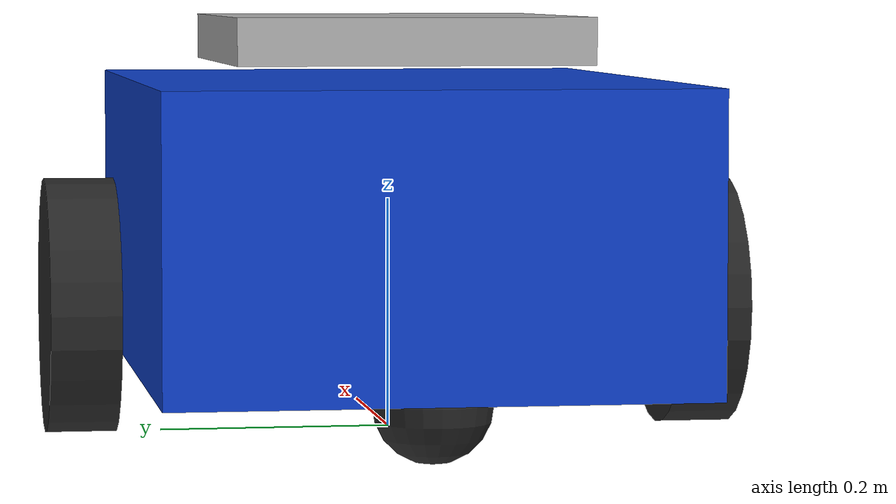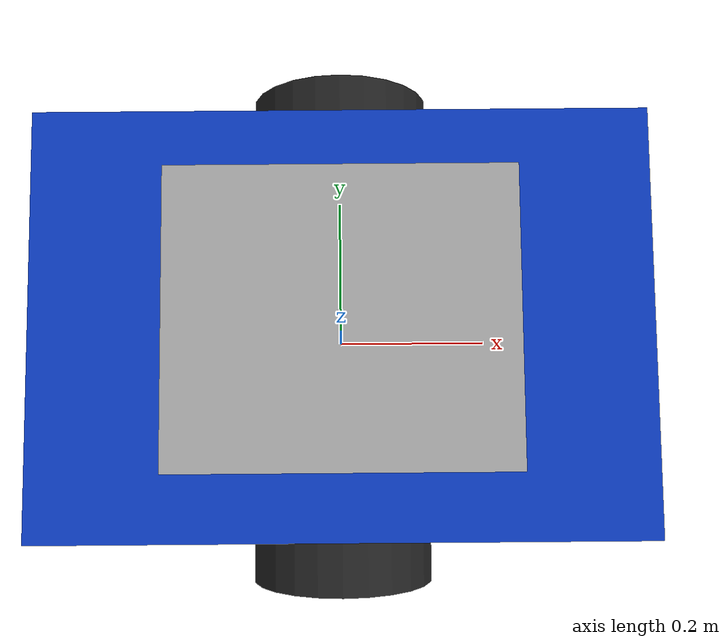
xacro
<?xml version="1.0"?>
<robot xmlns:xacro="http://www.ros.org/wiki/xacro" name="warehouse_bot">

  <xacro:include filename="$(find my_robot)/urdf/materials.xacro"/>
  <xacro:include filename="$(find my_robot)/urdf/chassis.xacro"/>
  <xacro:include filename="$(find my_robot)/urdf/wheels.xacro"/>
  <xacro:include filename="$(find my_robot)/urdf/gazebo.xacro"/>

  <!-- ================= MATERIALS ================= -->

  <!-- ================= MAIN BODY ================= -->

  <!-- ================= TOP SENSOR PLATFORM ================= -->

  <!-- ================= LEFT WHEEL ================= -->

  <!-- ================= RIGHT WHEEL ================= -->

  <!-- ================= WHEEL JOINTS ================= -->

  <!-- ================= REAR CASTER =========================-->

</robot>

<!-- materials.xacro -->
<robot xmlns:xacro="http://www.ros.org/wiki/xacro">

  <material name="body_blue">
    <color rgba="0.05 0.25 0.8 1"/>
  </material>

  <material name="dark_gray">
    <color rgba="0.15 0.15 0.15 1"/>
  </material>

  <material name="silver">
    <color rgba="0.7 0.7 0.7 1"/>
  </material>

</robot>

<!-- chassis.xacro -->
<robot xmlns:xacro="http://www.ros.org/wiki/xacro">

  <!-- ================= MAIN BODY ================= -->

  <link name="base_link">

    <visual>
      <origin xyz="0 0 0.18"/>
      <geometry>
        <box size="0.65 0.45 0.25"/>
      </geometry>
      <material name="body_blue"/>
    </visual>

    <collision>
      <origin xyz="0 0 0.18"/>
      <geometry>
        <box size="0.65 0.45 0.25"/>
      </geometry>
    </collision>

    <inertial>
      <origin xyz="0 0 0.18"/>
      <mass value="6"/>
      <inertia
        ixx="0.2"
        ixy="0"
        ixz="0"
        iyy="0.2"
        iyz="0"
        izz="0.2"/>
    </inertial>

  </link>

  <!-- ================= TOP SENSOR PLATFORM ================= -->

  <link name="top_plate">

    <visual>
      <origin xyz="0 0 0.34"/>
      <geometry>
        <box size="0.35 0.30 0.04"/>
      </geometry>
      <material name="silver"/>
    </visual>

    <collision>
      <origin xyz="0 0 0.34"/>
      <geometry>
        <box size="0.35 0.30 0.04"/>
      </geometry>
    </collision>

  </link>

  <joint name="top_plate_joint" type="fixed">

    <parent link="base_link"/>
    <child link="top_plate"/>

    <origin xyz="0 0 0"/>

  </joint>

</robot>

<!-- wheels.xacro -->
<robot xmlns:xacro="http://www.ros.org/wiki/xacro">

  <!-- ================= LEFT WHEEL ================= -->

  <link name="left_wheel">

    <visual>
      <origin rpy="1.5708 0 0"/>
      <geometry>
        <cylinder radius="0.11" length="0.06"/>
      </geometry>
      <material name="dark_gray"/>
    </visual>

    <collision>
      <origin rpy="1.5708 0 0"/>
      <geometry>
        <cylinder radius="0.11" length="0.06"/>
      </geometry>
    </collision>

    <inertial>
      <mass value="1"/>
      <inertia
        ixx="0.01"
        ixy="0"
        ixz="0"
        iyy="0.01"
        iyz="0"
        izz="0.01"/>
    </inertial>

  </link>

  <!-- ================= RIGHT WHEEL ================= -->

  <link name="right_wheel">

    <visual>
      <origin rpy="1.5708 0 0"/>
      <geometry>
        <cylinder radius="0.11" length="0.06"/>
      </geometry>
      <material name="dark_gray"/>
    </visual>

    <collision>
      <origin rpy="1.5708 0 0"/>
      <geometry>
        <cylinder radius="0.11" length="0.06"/>
      </geometry>
    </collision>

    <inertial>
      <mass value="1"/>
      <inertia
        ixx="0.01"
        ixy="0"
        ixz="0"
        iyy="0.01"
        iyz="0"
        izz="0.01"/>
    </inertial>

  </link>

  <!-- ================= WHEEL JOINTS ================= -->

  <joint name="left_wheel_joint" type="continuous">

    <parent link="base_link"/>
    <child link="left_wheel"/>

    <origin xyz="0 0.27 0.11"/>

    <axis xyz="0 1 0"/>

  </joint>

  <joint name="right_wheel_joint" type="continuous">

    <parent link="base_link"/>
    <child link="right_wheel"/>

    <origin xyz="0 -0.27 0.11"/>

    <axis xyz="0 1 0"/>

  </joint>

  <!-- ================= REAR CASTER ================= -->

  <link name="caster_wheel">

    <visual>

      <geometry>
        <sphere radius="0.05"/>
      </geometry>

      <origin xyz="-0.25 0 0.05"/>

      <material name="dark_gray"/>

    </visual>

    <collision>

      <geometry>
        <sphere radius="0.05"/>
      </geometry>

      <origin xyz="-0.25 0 0.05"/>

    </collision>

  </link>

  <joint name="caster_joint" type="fixed">

    <parent link="base_link"/>
    <child link="caster_wheel"/>

    <origin xyz="0 0 0"/>

  </joint>

</robot>
